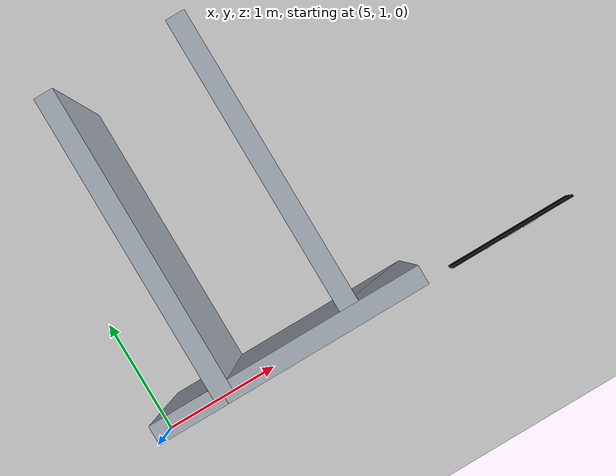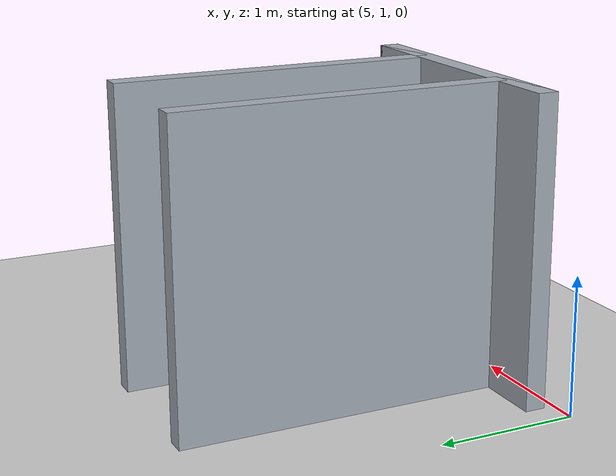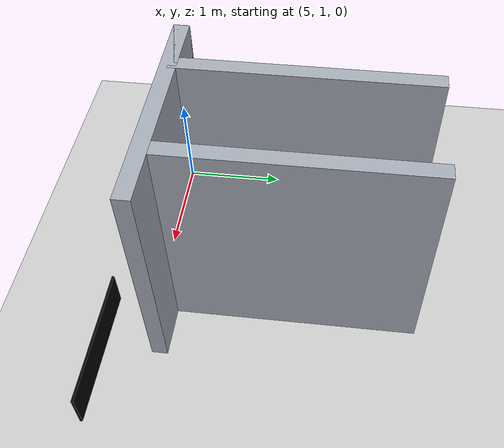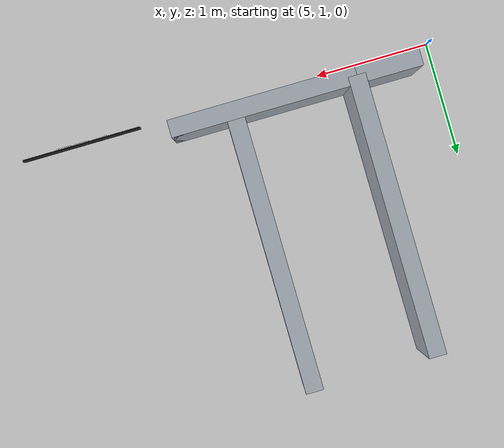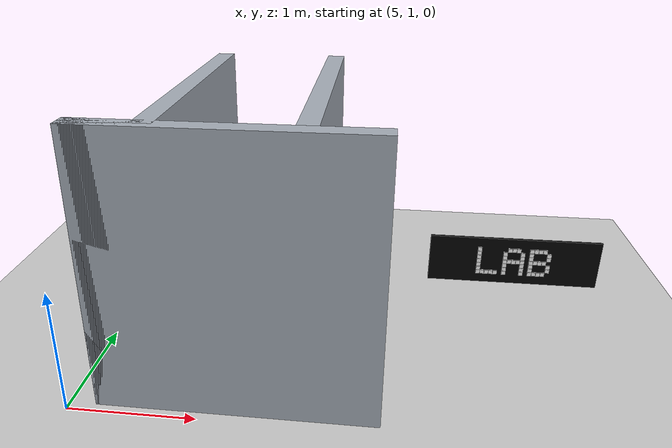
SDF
<sdf version="1.9">
 <world name="default">
  <model name="ground_plane">
   <static>true</static>
   <pose>5.05 0 -0.05 0 0 0</pose>
   <link name="body">
    <collision name="collision"><geometry><box><size>14.1 12 0.1</size></box></geometry></collision>
    <visual name="visual">
     <geometry><box><size>14.1 12 0.1</size></box></geometry>
     <material><ambient>0.8 0.8 0.8 1</ambient><diffuse>0.8 0.8 0.8 1</diffuse></material>
    </visual>
   </link>
  </model>
  <model name="room_1_1_1">
   <static>true</static>
   <pose>5.75 2.3499999999999996 1.1 0 0 0</pose>
   <link name="body">
    <collision name="collision"><geometry><box><size>0.15 2.4 2.2</size></box></geometry></collision>
    <visual name="visual">
     <geometry><box><size>0.15 2.4 2.2</size></box></geometry>
     <material><ambient>0.65 0.68 0.72 1</ambient><diffuse>0.65 0.68 0.72 1</diffuse></material>
    </visual>
   </link>
  </model>
  <model name="jamb_1_1_1">
   <static>true</static>
   <pose>5.475 1.15 1.1 0 0 0</pose>
   <link name="body">
    <collision name="collision"><geometry><box><size>0.55 0.15 2.2</size></box></geometry></collision>
    <visual name="visual">
     <geometry><box><size>0.55 0.15 2.2</size></box></geometry>
     <material><ambient>0.65 0.68 0.72 1</ambient><diffuse>0.65 0.68 0.72 1</diffuse></material>
    </visual>
   </link>
  </model>
  <model name="hall_1_2">
   <static>true</static>
   <pose>6.275 1.15 1.1 0 0 0</pose>
   <link name="body">
    <collision name="collision">
     <geometry><box><size>2.1499999999999995 0.15 2.2</size></box></geometry>
    </collision>
    <visual name="visual">
     <geometry><box><size>2.1499999999999995 0.15 2.2</size></box></geometry>
     <material><ambient>0.65 0.68 0.72 1</ambient><diffuse>0.65 0.68 0.72 1</diffuse></material>
    </visual>
   </link>
  </model>
  <model name="room_1_2_-1">
   <static>true</static>
   <pose>6.8 2.3499999999999996 1.1 0 0 0</pose>
   <link name="body">
    <collision name="collision"><geometry><box><size>0.15 2.4 2.2</size></box></geometry></collision>
    <visual name="visual">
     <geometry><box><size>0.15 2.4 2.2</size></box></geometry>
     <material><ambient>0.65 0.68 0.72 1</ambient><diffuse>0.65 0.68 0.72 1</diffuse></material>
    </visual>
   </link>
  </model>
  <model name="jamb_1_2_-1">
   <static>true</static>
   <pose>7.074999999999999 1.15 1.1 0 0 0</pose>
   <link name="body">
    <collision name="collision"><geometry><box><size>0.55 0.15 2.2</size></box></geometry></collision>
    <visual name="visual">
     <geometry><box><size>0.55 0.15 2.2</size></box></geometry>
     <material><ambient>0.65 0.68 0.72 1</ambient><diffuse>0.65 0.68 0.72 1</diffuse></material>
    </visual>
   </link>
  </model>
  <model name="readable_r3geo_base_r003_left_2_entrance_corridor">
   <static>true</static>
   <pose>8.1 1.05 1.43 0 0 0</pose>
   <link name="lettering">
    <visual name="backboard">
     <geometry><box><size>1.02 0.018 0.3</size></box></geometry>
     <material>
      <ambient>.015 .015 .015 1</ambient>
      <diffuse>.015 .015 .015 1</diffuse>
      <emissive>.015 .015 .015 1</emissive>
     </material>
     <cast_shadows>false</cast_shadows>
    </visual>
    <visual name="letter_0_0_0">
     <pose>-0.208 -0.014 0.078 0 0 0</pose>
     <geometry><box><size>0.024439999999999996 0.008 0.024439999999999996</size></box></geometry>
     <material>
      <ambient>.96 .96 .96 1</ambient>
      <diffuse>.96 .96 .96 1</diffuse>
      <emissive>.96 .96 .96 1</emissive>
     </material>
     <cast_shadows>false</cast_shadows>
    </visual>
    <visual name="letter_0_1_0">
     <pose>-0.208 -0.014 0.052 0 0 0</pose>
     <geometry><box><size>0.024439999999999996 0.008 0.024439999999999996</size></box></geometry>
     <material>
      <ambient>.96 .96 .96 1</ambient>
      <diffuse>.96 .96 .96 1</diffuse>
      <emissive>.96 .96 .96 1</emissive>
     </material>
     <cast_shadows>false</cast_shadows>
    </visual>
    <visual name="letter_0_2_0">
     <pose>-0.208 -0.014 0.026 0 0 0</pose>
     <geometry><box><size>0.024439999999999996 0.008 0.024439999999999996</size></box></geometry>
     <material>
      <ambient>.96 .96 .96 1</ambient>
      <diffuse>.96 .96 .96 1</diffuse>
      <emissive>.96 .96 .96 1</emissive>
     </material>
     <cast_shadows>false</cast_shadows>
    </visual>
    <visual name="letter_0_3_0">
     <pose>-0.208 -0.014 0 0 0 0</pose>
     <geometry><box><size>0.024439999999999996 0.008 0.024439999999999996</size></box></geometry>
     <material>
      <ambient>.96 .96 .96 1</ambient>
      <diffuse>.96 .96 .96 1</diffuse>
      <emissive>.96 .96 .96 1</emissive>
     </material>
     <cast_shadows>false</cast_shadows>
    </visual>
    <visual name="letter_0_4_0">
     <pose>-0.208 -0.014 -0.026 0 0 0</pose>
     <geometry><box><size>0.024439999999999996 0.008 0.024439999999999996</size></box></geometry>
     <material>
      <ambient>.96 .96 .96 1</ambient>
      <diffuse>.96 .96 .96 1</diffuse>
      <emissive>.96 .96 .96 1</emissive>
     </material>
     <cast_shadows>false</cast_shadows>
    </visual>
    <visual name="letter_0_5_0">
     <pose>-0.208 -0.014 -0.052 0 0 0</pose>
     <geometry><box><size>0.024439999999999996 0.008 0.024439999999999996</size></box></geometry>
     <material>
      <ambient>.96 .96 .96 1</ambient>
      <diffuse>.96 .96 .96 1</diffuse>
      <emissive>.96 .96 .96 1</emissive>
     </material>
     <cast_shadows>false</cast_shadows>
    </visual>
    <visual name="letter_0_6_0">
     <pose>-0.208 -0.014 -0.078 0 0 0</pose>
     <geometry><box><size>0.024439999999999996 0.008 0.024439999999999996</size></box></geometry>
     <material>
      <ambient>.96 .96 .96 1</ambient>
      <diffuse>.96 .96 .96 1</diffuse>
      <emissive>.96 .96 .96 1</emissive>
     </material>
     <cast_shadows>false</cast_shadows>
    </visual>
    <visual name="letter_0_6_1">
     <pose>-0.182 -0.014 -0.078 0 0 0</pose>
     <geometry><box><size>0.024439999999999996 0.008 0.024439999999999996</size></box></geometry>
     <material>
      <ambient>.96 .96 .96 1</ambient>
      <diffuse>.96 .96 .96 1</diffuse>
      <emissive>.96 .96 .96 1</emissive>
     </material>
     <cast_shadows>false</cast_shadows>
    </visual>
    <visual name="letter_0_6_2">
     <pose>-0.156 -0.014 -0.078 0 0 0</pose>
     <geometry><box><size>0.024439999999999996 0.008 0.024439999999999996</size></box></geometry>
     <material>
      <ambient>.96 .96 .96 1</ambient>
      <diffuse>.96 .96 .96 1</diffuse>
      <emissive>.96 .96 .96 1</emissive>
     </material>
     <cast_shadows>false</cast_shadows>
    </visual>
    <visual name="letter_0_6_3">
     <pose>-0.13 -0.014 -0.078 0 0 0</pose>
     <geometry><box><size>0.024439999999999996 0.008 0.024439999999999996</size></box></geometry>
     <material>
      <ambient>.96 .96 .96 1</ambient>
      <diffuse>.96 .96 .96 1</diffuse>
      <emissive>.96 .96 .96 1</emissive>
     </material>
     <cast_shadows>false</cast_shadows>
    </visual>
    <visual name="letter_0_6_4">
     <pose>-0.104 -0.014 -0.078 0 0 0</pose>
     <geometry><box><size>0.024439999999999996 0.008 0.024439999999999996</size></box></geometry>
     <material>
      <ambient>.96 .96 .96 1</ambient>
      <diffuse>.96 .96 .96 1</diffuse>
      <emissive>.96 .96 .96 1</emissive>
     </material>
     <cast_shadows>false</cast_shadows>
    </visual>
    <visual name="letter_1_0_1">
     <pose>-0.026 -0.014 0.078 0 0 0</pose>
     <geometry><box><size>0.024439999999999996 0.008 0.024439999999999996</size></box></geometry>
     <material>
      <ambient>.96 .96 .96 1</ambient>
      <diffuse>.96 .96 .96 1</diffuse>
      <emissive>.96 .96 .96 1</emissive>
     </material>
     <cast_shadows>false</cast_shadows>
    </visual>
    <visual name="letter_1_0_2">
     <pose>0 -0.014 0.078 0 0 0</pose>
     <geometry><box><size>0.024439999999999996 0.008 0.024439999999999996</size></box></geometry>
     <material>
      <ambient>.96 .96 .96 1</ambient>
      <diffuse>.96 .96 .96 1</diffuse>
      <emissive>.96 .96 .96 1</emissive>
     </material>
     <cast_shadows>false</cast_shadows>
    </visual>
    <visual name="letter_1_0_3">
     <pose>0.026 -0.014 0.078 0 0 0</pose>
     <geometry><box><size>0.024439999999999996 0.008 0.024439999999999996</size></box></geometry>
     <material>
      <ambient>.96 .96 .96 1</ambient>
      <diffuse>.96 .96 .96 1</diffuse>
      <emissive>.96 .96 .96 1</emissive>
     </material>
     <cast_shadows>false</cast_shadows>
    </visual>
    <visual name="letter_1_1_0">
     <pose>-0.052 -0.014 0.052 0 0 0</pose>
     <geometry><box><size>0.024439999999999996 0.008 0.024439999999999996</size></box></geometry>
     <material>
      <ambient>.96 .96 .96 1</ambient>
      <diffuse>.96 .96 .96 1</diffuse>
      <emissive>.96 .96 .96 1</emissive>
     </material>
     <cast_shadows>false</cast_shadows>
    </visual>
    <visual name="letter_1_1_4">
     <pose>0.052 -0.014 0.052 0 0 0</pose>
     <geometry><box><size>0.024439999999999996 0.008 0.024439999999999996</size></box></geometry>
     <material>
      <ambient>.96 .96 .96 1</ambient>
      <diffuse>.96 .96 .96 1</diffuse>
      <emissive>.96 .96 .96 1</emissive>
     </material>
     <cast_shadows>false</cast_shadows>
    </visual>
    <visual name="letter_1_2_0">
     <pose>-0.052 -0.014 0.026 0 0 0</pose>
     <geometry><box><size>0.024439999999999996 0.008 0.024439999999999996</size></box></geometry>
     <material>
      <ambient>.96 .96 .96 1</ambient>
      <diffuse>.96 .96 .96 1</diffuse>
      <emissive>.96 .96 .96 1</emissive>
     </material>
     <cast_shadows>false</cast_shadows>
    </visual>
    <visual name="letter_1_2_4">
     <pose>0.052 -0.014 0.026 0 0 0</pose>
     <geometry><box><size>0.024439999999999996 0.008 0.024439999999999996</size></box></geometry>
     <material>
      <ambient>.96 .96 .96 1</ambient>
      <diffuse>.96 .96 .96 1</diffuse>
      <emissive>.96 .96 .96 1</emissive>
     </material>
     <cast_shadows>false</cast_shadows>
    </visual>
    <visual name="letter_1_3_0">
     <pose>-0.052 -0.014 0 0 0 0</pose>
     <geometry><box><size>0.024439999999999996 0.008 0.024439999999999996</size></box></geometry>
     <material>
      <ambient>.96 .96 .96 1</ambient>
      <diffuse>.96 .96 .96 1</diffuse>
      <emissive>.96 .96 .96 1</emissive>
     </material>
     <cast_shadows>false</cast_shadows>
    </visual>
    <visual name="letter_1_3_1">
     <pose>-0.026 -0.014 0 0 0 0</pose>
     <geometry><box><size>0.024439999999999996 0.008 0.024439999999999996</size></box></geometry>
     <material>
      <ambient>.96 .96 .96 1</ambient>
      <diffuse>.96 .96 .96 1</diffuse>
      <emissive>.96 .96 .96 1</emissive>
     </material>
     <cast_shadows>false</cast_shadows>
    </visual>
    <visual name="letter_1_3_2">
     <pose>0 -0.014 0 0 0 0</pose>
     <geometry><box><size>0.024439999999999996 0.008 0.024439999999999996</size></box></geometry>
     <material>
      <ambient>.96 .96 .96 1</ambient>
      <diffuse>.96 .96 .96 1</diffuse>
      <emissive>.96 .96 .96 1</emissive>
     </material>
     <cast_shadows>false</cast_shadows>
    </visual>
    <visual name="letter_1_3_3">
     <pose>0.026 -0.014 0 0 0 0</pose>
     <geometry><box><size>0.024439999999999996 0.008 0.024439999999999996</size></box></geometry>
     <material>
      <ambient>.96 .96 .96 1</ambient>
      <diffuse>.96 .96 .96 1</diffuse>
      <emissive>.96 .96 .96 1</emissive>
     </material>
     <cast_shadows>false</cast_shadows>
    </visual>
    <visual name="letter_1_3_4">
     <pose>0.052 -0.014 0 0 0 0</pose>
     <geometry><box><size>0.024439999999999996 0.008 0.024439999999999996</size></box></geometry>
     <material>
      <ambient>.96 .96 .96 1</ambient>
      <diffuse>.96 .96 .96 1</diffuse>
      <emissive>.96 .96 .96 1</emissive>
     </material>
     <cast_shadows>false</cast_shadows>
    </visual>
    <visual name="letter_1_4_0">
     <pose>-0.052 -0.014 -0.026 0 0 0</pose>
     <geometry><box><size>0.024439999999999996 0.008 0.024439999999999996</size></box></geometry>
     <material>
      <ambient>.96 .96 .96 1</ambient>
      <diffuse>.96 .96 .96 1</diffuse>
      <emissive>.96 .96 .96 1</emissive>
     </material>
     <cast_shadows>false</cast_shadows>
    </visual>
    <visual name="letter_1_4_4">
     <pose>0.052 -0.014 -0.026 0 0 0</pose>
     <geometry><box><size>0.024439999999999996 0.008 0.024439999999999996</size></box></geometry>
     <material>
      <ambient>.96 .96 .96 1</ambient>
      <diffuse>.96 .96 .96 1</diffuse>
      <emissive>.96 .96 .96 1</emissive>
     </material>
     <cast_shadows>false</cast_shadows>
    </visual>
    <visual name="letter_1_5_0">
     <pose>-0.052 -0.014 -0.052 0 0 0</pose>
     <geometry><box><size>0.024439999999999996 0.008 0.024439999999999996</size></box></geometry>
     <material>
      <ambient>.96 .96 .96 1</ambient>
      <diffuse>.96 .96 .96 1</diffuse>
      <emissive>.96 .96 .96 1</emissive>
     </material>
     <cast_shadows>false</cast_shadows>
    </visual>
    <visual name="letter_1_5_4">
     <pose>0.052 -0.014 -0.052 0 0 0</pose>
     <geometry><box><size>0.024439999999999996 0.008 0.024439999999999996</size></box></geometry>
     <material>
      <ambient>.96 .96 .96 1</ambient>
      <diffuse>.96 .96 .96 1</diffuse>
      <emissive>.96 .96 .96 1</emissive>
     </material>
     <cast_shadows>false</cast_shadows>
    </visual>
    <visual name="letter_1_6_0">
     <pose>-0.052 -0.014 -0.078 0 0 0</pose>
     <geometry><box><size>0.024439999999999996 0.008 0.024439999999999996</size></box></geometry>
     <material>
      <ambient>.96 .96 .96 1</ambient>
      <diffuse>.96 .96 .96 1</diffuse>
      <emissive>.96 .96 .96 1</emissive>
     </material>
     <cast_shadows>false</cast_shadows>
    </visual>
    <visual name="letter_1_6_4">
     <pose>0.052 -0.014 -0.078 0 0 0</pose>
     <geometry><box><size>0.024439999999999996 0.008 0.024439999999999996</size></box></geometry>
     <material>
      <ambient>.96 .96 .96 1</ambient>
      <diffuse>.96 .96 .96 1</diffuse>
      <emissive>.96 .96 .96 1</emissive>
     </material>
     <cast_shadows>false</cast_shadows>
    </visual>
    <visual name="letter_2_0_0">
     <pose>0.104 -0.014 0.078 0 0 0</pose>
     <geometry><box><size>0.024439999999999996 0.008 0.024439999999999996</size></box></geometry>
     <material>
      <ambient>.96 .96 .96 1</ambient>
      <diffuse>.96 .96 .96 1</diffuse>
      <emissive>.96 .96 .96 1</emissive>
     </material>
     <cast_shadows>false</cast_shadows>
    </visual>
    <visual name="letter_2_0_1">
     <pose>0.13 -0.014 0.078 0 0 0</pose>
     <geometry><box><size>0.024439999999999996 0.008 0.024439999999999996</size></box></geometry>
     <material>
      <ambient>.96 .96 .96 1</ambient>
      <diffuse>.96 .96 .96 1</diffuse>
      <emissive>.96 .96 .96 1</emissive>
     </material>
     <cast_shadows>false</cast_shadows>
    </visual>
    <visual name="letter_2_0_2">
     <pose>0.156 -0.014 0.078 0 0 0</pose>
     <geometry><box><size>0.024439999999999996 0.008 0.024439999999999996</size></box></geometry>
     <material>
      <ambient>.96 .96 .96 1</ambient>
      <diffuse>.96 .96 .96 1</diffuse>
      <emissive>.96 .96 .96 1</emissive>
     </material>
     <cast_shadows>false</cast_shadows>
    </visual>
    <visual name="letter_2_0_3">
     <pose>0.182 -0.014 0.078 0 0 0</pose>
     <geometry><box><size>0.024439999999999996 0.008 0.024439999999999996</size></box></geometry>
     <material>
      <ambient>.96 .96 .96 1</ambient>
      <diffuse>.96 .96 .96 1</diffuse>
      <emissive>.96 .96 .96 1</emissive>
     </material>
     <cast_shadows>false</cast_shadows>
    </visual>
    <visual name="letter_2_1_0">
     <pose>0.104 -0.014 0.052 0 0 0</pose>
     <geometry><box><size>0.024439999999999996 0.008 0.024439999999999996</size></box></geometry>
     <material>
      <ambient>.96 .96 .96 1</ambient>
      <diffuse>.96 .96 .96 1</diffuse>
      <emissive>.96 .96 .96 1</emissive>
     </material>
     <cast_shadows>false</cast_shadows>
    </visual>
    <visual name="letter_2_1_4">
     <pose>0.208 -0.014 0.052 0 0 0</pose>
     <geometry><box><size>0.024439999999999996 0.008 0.024439999999999996</size></box></geometry>
     <material>
      <ambient>.96 .96 .96 1</ambient>
      <diffuse>.96 .96 .96 1</diffuse>
      <emissive>.96 .96 .96 1</emissive>
     </material>
     <cast_shadows>false</cast_shadows>
    </visual>
    <visual name="letter_2_2_0">
     <pose>0.104 -0.014 0.026 0 0 0</pose>
     <geometry><box><size>0.024439999999999996 0.008 0.024439999999999996</size></box></geometry>
     <material>
      <ambient>.96 .96 .96 1</ambient>
      <diffuse>.96 .96 .96 1</diffuse>
      <emissive>.96 .96 .96 1</emissive>
     </material>
     <cast_shadows>false</cast_shadows>
    </visual>
    <visual name="letter_2_2_4">
     <pose>0.208 -0.014 0.026 0 0 0</pose>
     <geometry><box><size>0.024439999999999996 0.008 0.024439999999999996</size></box></geometry>
     <material>
      <ambient>.96 .96 .96 1</ambient>
      <diffuse>.96 .96 .96 1</diffuse>
      <emissive>.96 .96 .96 1</emissive>
     </material>
     <cast_shadows>false</cast_shadows>
    </visual>
    <visual name="letter_2_3_0">
     <pose>0.104 -0.014 0 0 0 0</pose>
     <geometry><box><size>0.024439999999999996 0.008 0.024439999999999996</size></box></geometry>
     <material>
      <ambient>.96 .96 .96 1</ambient>
      <diffuse>.96 .96 .96 1</diffuse>
      <emissive>.96 .96 .96 1</emissive>
     </material>
     <cast_shadows>false</cast_shadows>
    </visual>
    <visual name="letter_2_3_1">
     <pose>0.13 -0.014 0 0 0 0</pose>
     <geometry><box><size>0.024439999999999996 0.008 0.024439999999999996</size></box></geometry>
     <material>
      <ambient>.96 .96 .96 1</ambient>
      <diffuse>.96 .96 .96 1</diffuse>
      <emissive>.96 .96 .96 1</emissive>
     </material>
     <cast_shadows>false</cast_shadows>
    </visual>
    <visual name="letter_2_3_2">
     <pose>0.156 -0.014 0 0 0 0</pose>
     <geometry><box><size>0.024439999999999996 0.008 0.024439999999999996</size></box></geometry>
     <material>
      <ambient>.96 .96 .96 1</ambient>
      <diffuse>.96 .96 .96 1</diffuse>
      <emissive>.96 .96 .96 1</emissive>
     </material>
     <cast_shadows>false</cast_shadows>
    </visual>
    <visual name="letter_2_3_3">
     <pose>0.182 -0.014 0 0 0 0</pose>
     <geometry><box><size>0.024439999999999996 0.008 0.024439999999999996</size></box></geometry>
     <material>
      <ambient>.96 .96 .96 1</ambient>
      <diffuse>.96 .96 .96 1</diffuse>
      <emissive>.96 .96 .96 1</emissive>
     </material>
     <cast_shadows>false</cast_shadows>
    </visual>
    <visual name="letter_2_4_0">
     <pose>0.104 -0.014 -0.026 0 0 0</pose>
     <geometry><box><size>0.024439999999999996 0.008 0.024439999999999996</size></box></geometry>
     <material>
      <ambient>.96 .96 .96 1</ambient>
      <diffuse>.96 .96 .96 1</diffuse>
      <emissive>.96 .96 .96 1</emissive>
     </material>
     <cast_shadows>false</cast_shadows>
    </visual>
    <visual name="letter_2_4_4">
     <pose>0.208 -0.014 -0.026 0 0 0</pose>
     <geometry><box><size>0.024439999999999996 0.008 0.024439999999999996</size></box></geometry>
     <material>
      <ambient>.96 .96 .96 1</ambient>
      <diffuse>.96 .96 .96 1</diffuse>
      <emissive>.96 .96 .96 1</emissive>
     </material>
     <cast_shadows>false</cast_shadows>
    </visual>
    <visual name="letter_2_5_0">
     <pose>0.104 -0.014 -0.052 0 0 0</pose>
     <geometry><box><size>0.024439999999999996 0.008 0.024439999999999996</size></box></geometry>
     <material>
      <ambient>.96 .96 .96 1</ambient>
      <diffuse>.96 .96 .96 1</diffuse>
      <emissive>.96 .96 .96 1</emissive>
     </material>
     <cast_shadows>false</cast_shadows>
    </visual>
    <visual name="letter_2_5_4">
     <pose>0.208 -0.014 -0.052 0 0 0</pose>
     <geometry><box><size>0.024439999999999996 0.008 0.024439999999999996</size></box></geometry>
     <material>
      <ambient>.96 .96 .96 1</ambient>
      <diffuse>.96 .96 .96 1</diffuse>
      <emissive>.96 .96 .96 1</emissive>
     </material>
     <cast_shadows>false</cast_shadows>
    </visual>
    <visual name="letter_2_6_0">
     <pose>0.104 -0.014 -0.078 0 0 0</pose>
     <geometry><box><size>0.024439999999999996 0.008 0.024439999999999996</size></box></geometry>
     <material>
      <ambient>.96 .96 .96 1</ambient>
      <diffuse>.96 .96 .96 1</diffuse>
      <emissive>.96 .96 .96 1</emissive>
     </material>
     <cast_shadows>false</cast_shadows>
    </visual>
    <visual name="letter_2_6_1">
     <pose>0.13 -0.014 -0.078 0 0 0</pose>
     <geometry><box><size>0.024439999999999996 0.008 0.024439999999999996</size></box></geometry>
     <material>
      <ambient>.96 .96 .96 1</ambient>
      <diffuse>.96 .96 .96 1</diffuse>
      <emissive>.96 .96 .96 1</emissive>
     </material>
     <cast_shadows>false</cast_shadows>
    </visual>
    <visual name="letter_2_6_2">
     <pose>0.156 -0.014 -0.078 0 0 0</pose>
     <geometry><box><size>0.024439999999999996 0.008 0.024439999999999996</size></box></geometry>
     <material>
      <ambient>.96 .96 .96 1</ambient>
      <diffuse>.96 .96 .96 1</diffuse>
      <emissive>.96 .96 .96 1</emissive>
     </material>
     <cast_shadows>false</cast_shadows>
    </visual>
    <visual name="letter_2_6_3">
     <pose>0.182 -0.014 -0.078 0 0 0</pose>
     <geometry><box><size>0.024439999999999996 0.008 0.024439999999999996</size></box></geometry>
     <material>
      <ambient>.96 .96 .96 1</ambient>
      <diffuse>.96 .96 .96 1</diffuse>
      <emissive>.96 .96 .96 1</emissive>
     </material>
     <cast_shadows>false</cast_shadows>
    </visual>
   </link>
  </model>
 </world>
</sdf>
